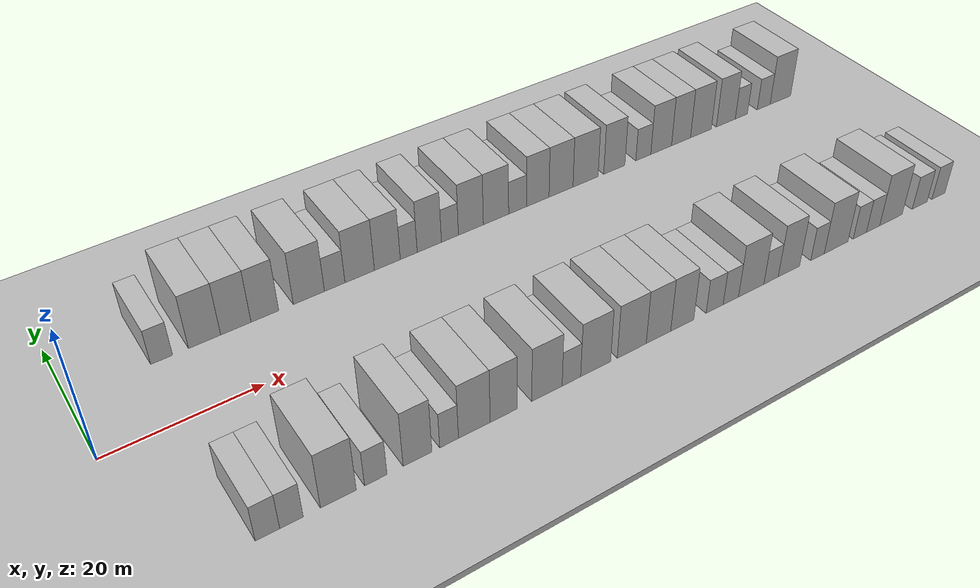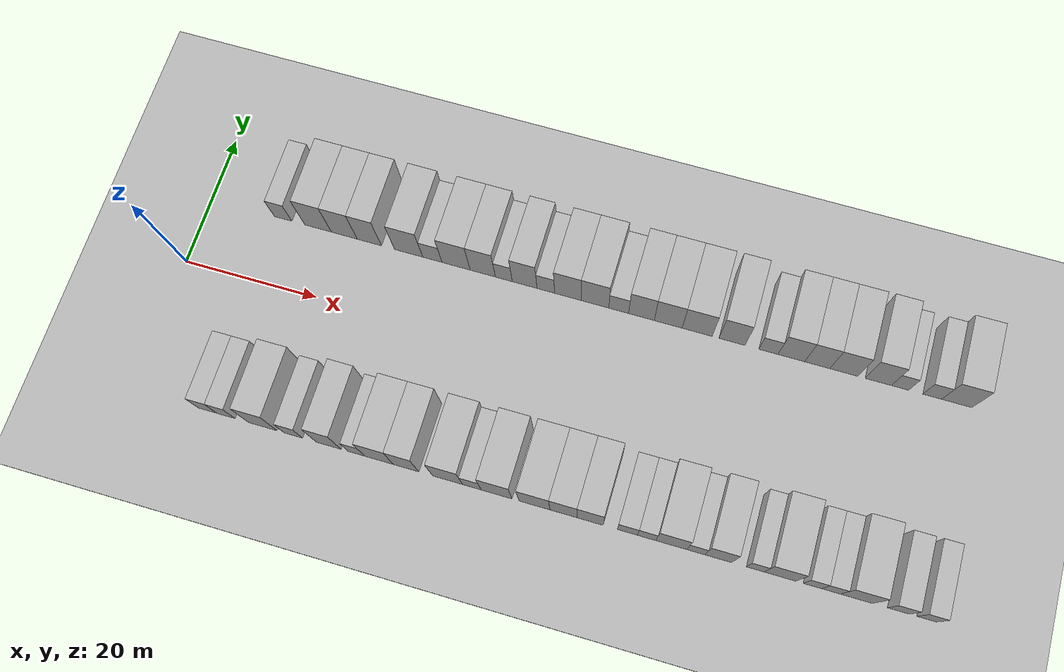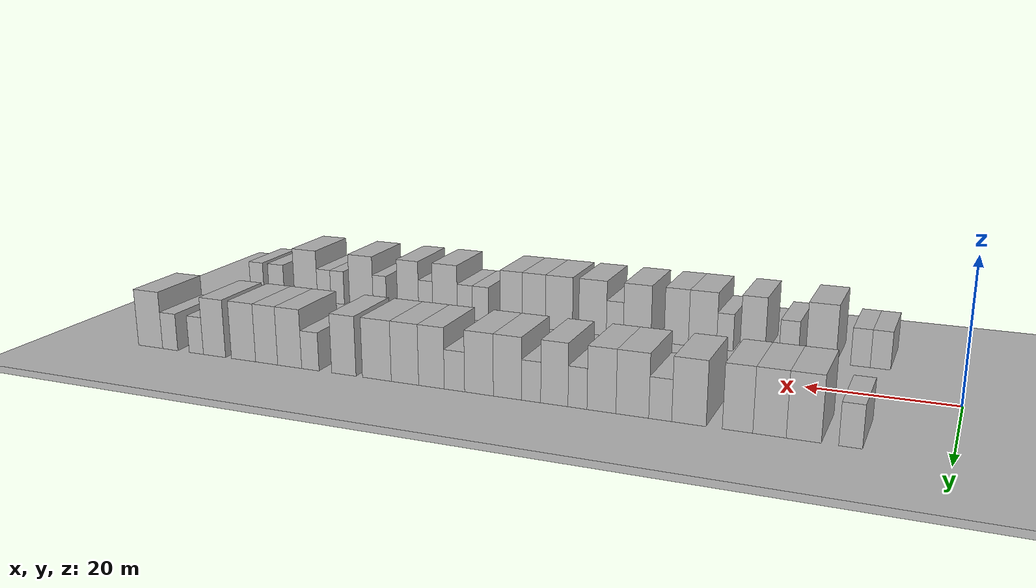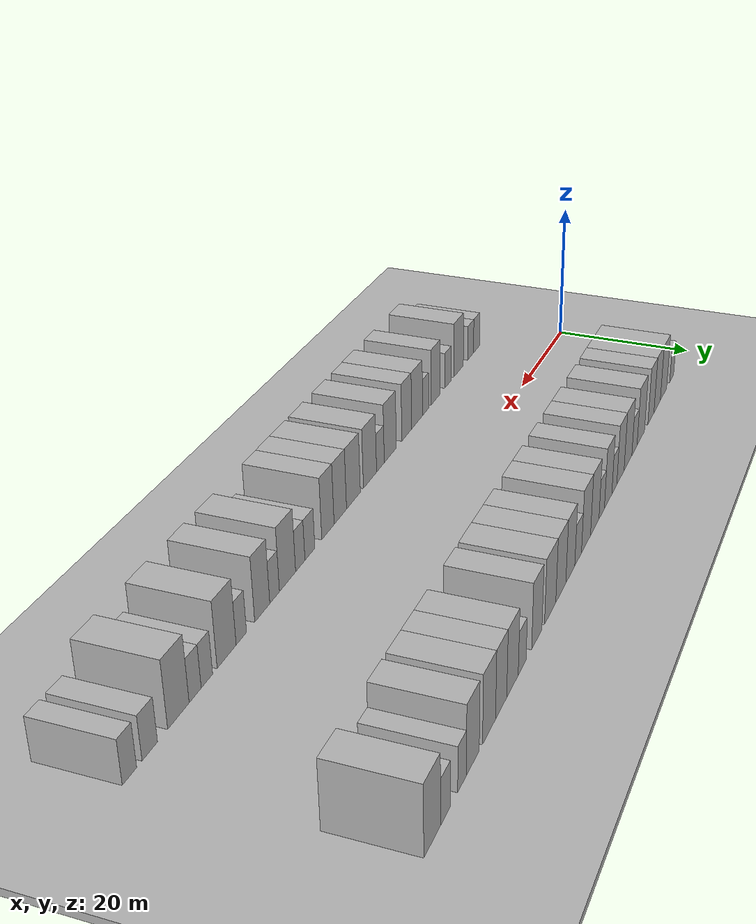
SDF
<sdf version="1.6">
 <world name="default">
  <include><name>ground_plane_1</name><uri>model://HANNAS_ground_plane</uri></include>
  <include>
   <name>ground_plane_2</name>
   <uri>model://HANNAS_ground_plane</uri>
   <pose>100 0 0  0 0 0</pose>
  </include>
  <model name="building_1">
   <static>1</static>
   <pose>11.3692 15.0000 0 0.000000 0.000000 1.570796</pose>
   <link name="link">
    <pose>0 0 3.00 0 0 0</pose>
    <collision name="collision"><geometry><box><size>10.0000 2.7384 6.0000</size></box></geometry></collision>
    <visual name="visual">
     <cast_shadows>0</cast_shadows>
     <geometry><box><size>10.0000 2.7384 6.0000</size></box></geometry>
     <material>
      <script>
       <uri>model://HANNAS_wall/materials/scripts</uri>
       <uri>model://HANNAS_wall/materials/textures</uri>
       <name>vrc/HANNAS_wall</name>
      </script>
     </material>
    </visual>
   </link>
  </model>
  <model name="building_2">
   <static>1</static>
   <pose>16.8051 15.0000 0 0.000000 0.000000 1.570796</pose>
   <link name="link">
    <pose>0 0 4.50 0 0 0</pose>
    <collision name="collision"><geometry><box><size>10.0000 4.1334 9.0000</size></box></geometry></collision>
    <visual name="visual">
     <cast_shadows>0</cast_shadows>
     <geometry><box><size>10.0000 4.1334 9.0000</size></box></geometry>
     <material>
      <script>
       <uri>model://HANNAS_wall/materials/scripts</uri>
       <uri>model://HANNAS_wall/materials/textures</uri>
       <name>vrc/HANNAS_wall</name>
      </script>
     </material>
    </visual>
   </link>
  </model>
  <model name="building_3">
   <static>1</static>
   <pose>20.8733 15.0000 0 0.000000 0.000000 1.570796</pose>
   <link name="link">
    <pose>0 0 4.50 0 0 0</pose>
    <collision name="collision"><geometry><box><size>10.0000 4.0029 9.0000</size></box></geometry></collision>
    <visual name="visual">
     <cast_shadows>0</cast_shadows>
     <geometry><box><size>10.0000 4.0029 9.0000</size></box></geometry>
     <material>
      <script>
       <uri>model://HANNAS_wall/materials/scripts</uri>
       <uri>model://HANNAS_wall/materials/textures</uri>
       <name>vrc/HANNAS_wall</name>
      </script>
     </material>
    </visual>
   </link>
  </model>
  <model name="building_4">
   <static>1</static>
   <pose>24.7356 15.0000 0 0.000000 0.000000 1.570796</pose>
   <link name="link">
    <pose>0 0 4.50 0 0 0</pose>
    <collision name="collision"><geometry><box><size>10.0000 3.7217 9.0000</size></box></geometry></collision>
    <visual name="visual">
     <cast_shadows>0</cast_shadows>
     <geometry><box><size>10.0000 3.7217 9.0000</size></box></geometry>
     <material>
      <script>
       <uri>model://HANNAS_wall/materials/scripts</uri>
       <uri>model://HANNAS_wall/materials/textures</uri>
       <name>vrc/HANNAS_wall</name>
      </script>
     </material>
    </visual>
   </link>
  </model>
  <model name="building_5">
   <static>1</static>
   <pose>30.7625 15.0000 0 0.000000 0.000000 1.570796</pose>
   <link name="link">
    <pose>0 0 4.50 0 0 0</pose>
    <collision name="collision"><geometry><box><size>10.0000 4.3320 9.0000</size></box></geometry></collision>
    <visual name="visual">
     <cast_shadows>0</cast_shadows>
     <geometry><box><size>10.0000 4.3320 9.0000</size></box></geometry>
     <material>
      <script>
       <uri>model://HANNAS_wall/materials/scripts</uri>
       <uri>model://HANNAS_wall/materials/textures</uri>
       <name>vrc/HANNAS_wall</name>
      </script>
     </material>
    </visual>
   </link>
  </model>
  <model name="building_6">
   <static>1</static>
   <pose>34.3926 15.0000 0 0.000000 0.000000 1.570796</pose>
   <link name="link">
    <pose>0 0 3.00 0 0 0</pose>
    <collision name="collision"><geometry><box><size>10.0000 2.9282 6.0000</size></box></geometry></collision>
    <visual name="visual">
     <cast_shadows>0</cast_shadows>
     <geometry><box><size>10.0000 2.9282 6.0000</size></box></geometry>
     <material>
      <script>
       <uri>model://HANNAS_wall/materials/scripts</uri>
       <uri>model://HANNAS_wall/materials/textures</uri>
       <name>vrc/HANNAS_wall</name>
      </script>
     </material>
    </visual>
   </link>
  </model>
  <model name="building_7">
   <static>1</static>
   <pose>37.9927 15.0000 0 0.000000 0.000000 1.570796</pose>
   <link name="link">
    <pose>0 0 4.50 0 0 0</pose>
    <collision name="collision"><geometry><box><size>10.0000 4.2720 9.0000</size></box></geometry></collision>
    <visual name="visual">
     <cast_shadows>0</cast_shadows>
     <geometry><box><size>10.0000 4.2720 9.0000</size></box></geometry>
     <material>
      <script>
       <uri>model://HANNAS_wall/materials/scripts</uri>
       <uri>model://HANNAS_wall/materials/textures</uri>
       <name>vrc/HANNAS_wall</name>
      </script>
     </material>
    </visual>
   </link>
  </model>
  <model name="building_8">
   <static>1</static>
   <pose>42.0451 15.0000 0 0.000000 0.000000 1.570796</pose>
   <link name="link">
    <pose>0 0 4.50 0 0 0</pose>
    <collision name="collision"><geometry><box><size>10.0000 3.8328 9.0000</size></box></geometry></collision>
    <visual name="visual">
     <cast_shadows>0</cast_shadows>
     <geometry><box><size>10.0000 3.8328 9.0000</size></box></geometry>
     <material>
      <script>
       <uri>model://HANNAS_wall/materials/scripts</uri>
       <uri>model://HANNAS_wall/materials/textures</uri>
       <name>vrc/HANNAS_wall</name>
      </script>
     </material>
    </visual>
   </link>
  </model>
  <model name="building_9">
   <static>1</static>
   <pose>45.2384 15.0000 0 0.000000 0.000000 1.570796</pose>
   <link name="link">
    <pose>0 0 3.00 0 0 0</pose>
    <collision name="collision"><geometry><box><size>10.0000 2.5539 6.0000</size></box></geometry></collision>
    <visual name="visual">
     <cast_shadows>0</cast_shadows>
     <geometry><box><size>10.0000 2.5539 6.0000</size></box></geometry>
     <material>
      <script>
       <uri>model://HANNAS_wall/materials/scripts</uri>
       <uri>model://HANNAS_wall/materials/textures</uri>
       <name>vrc/HANNAS_wall</name>
      </script>
     </material>
    </visual>
   </link>
  </model>
  <model name="building_10">
   <static>1</static>
   <pose>48.3754 15.0000 0 0.000000 0.000000 1.570796</pose>
   <link name="link">
    <pose>0 0 4.50 0 0 0</pose>
    <collision name="collision"><geometry><box><size>10.0000 3.7200 9.0000</size></box></geometry></collision>
    <visual name="visual">
     <cast_shadows>0</cast_shadows>
     <geometry><box><size>10.0000 3.7200 9.0000</size></box></geometry>
     <material>
      <script>
       <uri>model://HANNAS_wall/materials/scripts</uri>
       <uri>model://HANNAS_wall/materials/textures</uri>
       <name>vrc/HANNAS_wall</name>
      </script>
     </material>
    </visual>
   </link>
  </model>
  <model name="building_11">
   <static>1</static>
   <pose>51.5613 15.0000 0 0.000000 0.000000 1.570796</pose>
   <link name="link">
    <pose>0 0 3.00 0 0 0</pose>
    <collision name="collision"><geometry><box><size>10.0000 2.6518 6.0000</size></box></geometry></collision>
    <visual name="visual">
     <cast_shadows>0</cast_shadows>
     <geometry><box><size>10.0000 2.6518 6.0000</size></box></geometry>
     <material>
      <script>
       <uri>model://HANNAS_wall/materials/scripts</uri>
       <uri>model://HANNAS_wall/materials/textures</uri>
       <name>vrc/HANNAS_wall</name>
      </script>
     </material>
    </visual>
   </link>
  </model>
  <model name="building_12">
   <static>1</static>
   <pose>54.8684 15.0000 0 0.000000 0.000000 1.570796</pose>
   <link name="link">
    <pose>0 0 4.50 0 0 0</pose>
    <collision name="collision"><geometry><box><size>10.0000 3.9625 9.0000</size></box></geometry></collision>
    <visual name="visual">
     <cast_shadows>0</cast_shadows>
     <geometry><box><size>10.0000 3.9625 9.0000</size></box></geometry>
     <material>
      <script>
       <uri>model://HANNAS_wall/materials/scripts</uri>
       <uri>model://HANNAS_wall/materials/textures</uri>
       <name>vrc/HANNAS_wall</name>
      </script>
     </material>
    </visual>
   </link>
  </model>
  <model name="building_13">
   <static>1</static>
   <pose>58.9045 15.0000 0 0.000000 0.000000 1.570796</pose>
   <link name="link">
    <pose>0 0 4.50 0 0 0</pose>
    <collision name="collision"><geometry><box><size>10.0000 4.1097 9.0000</size></box></geometry></collision>
    <visual name="visual">
     <cast_shadows>0</cast_shadows>
     <geometry><box><size>10.0000 4.1097 9.0000</size></box></geometry>
     <material>
      <script>
       <uri>model://HANNAS_wall/materials/scripts</uri>
       <uri>model://HANNAS_wall/materials/textures</uri>
       <name>vrc/HANNAS_wall</name>
      </script>
     </material>
    </visual>
   </link>
  </model>
  <model name="building_14">
   <static>1</static>
   <pose>62.4323 15.0000 0 0.000000 0.000000 1.570796</pose>
   <link name="link">
    <pose>0 0 3.00 0 0 0</pose>
    <collision name="collision"><geometry><box><size>10.0000 2.9458 6.0000</size></box></geometry></collision>
    <visual name="visual">
     <cast_shadows>0</cast_shadows>
     <geometry><box><size>10.0000 2.9458 6.0000</size></box></geometry>
     <material>
      <script>
       <uri>model://HANNAS_wall/materials/scripts</uri>
       <uri>model://HANNAS_wall/materials/textures</uri>
       <name>vrc/HANNAS_wall</name>
      </script>
     </material>
    </visual>
   </link>
  </model>
  <model name="building_15">
   <static>1</static>
   <pose>65.8019 15.0000 0 0.000000 0.000000 1.570796</pose>
   <link name="link">
    <pose>0 0 4.50 0 0 0</pose>
    <collision name="collision"><geometry><box><size>10.0000 3.7934 9.0000</size></box></geometry></collision>
    <visual name="visual">
     <cast_shadows>0</cast_shadows>
     <geometry><box><size>10.0000 3.7934 9.0000</size></box></geometry>
     <material>
      <script>
       <uri>model://HANNAS_wall/materials/scripts</uri>
       <uri>model://HANNAS_wall/materials/textures</uri>
       <name>vrc/HANNAS_wall</name>
      </script>
     </material>
    </visual>
   </link>
  </model>
  <model name="building_16">
   <static>1</static>
   <pose>69.7563 15.0000 0 0.000000 0.000000 1.570796</pose>
   <link name="link">
    <pose>0 0 4.50 0 0 0</pose>
    <collision name="collision"><geometry><box><size>10.0000 4.1156 9.0000</size></box></geometry></collision>
    <visual name="visual">
     <cast_shadows>0</cast_shadows>
     <geometry><box><size>10.0000 4.1156 9.0000</size></box></geometry>
     <material>
      <script>
       <uri>model://HANNAS_wall/materials/scripts</uri>
       <uri>model://HANNAS_wall/materials/textures</uri>
       <name>vrc/HANNAS_wall</name>
      </script>
     </material>
    </visual>
   </link>
  </model>
  <model name="building_17">
   <static>1</static>
   <pose>74.0166 15.0000 0 0.000000 0.000000 1.570796</pose>
   <link name="link">
    <pose>0 0 4.50 0 0 0</pose>
    <collision name="collision"><geometry><box><size>10.0000 4.4050 9.0000</size></box></geometry></collision>
    <visual name="visual">
     <cast_shadows>0</cast_shadows>
     <geometry><box><size>10.0000 4.4050 9.0000</size></box></geometry>
     <material>
      <script>
       <uri>model://HANNAS_wall/materials/scripts</uri>
       <uri>model://HANNAS_wall/materials/textures</uri>
       <name>vrc/HANNAS_wall</name>
      </script>
     </material>
    </visual>
   </link>
  </model>
  <model name="building_18">
   <static>1</static>
   <pose>79.1240 15.0000 0 0.000000 0.000000 1.570796</pose>
   <link name="link">
    <pose>0 0 4.50 0 0 0</pose>
    <collision name="collision"><geometry><box><size>10.0000 3.8099 9.0000</size></box></geometry></collision>
    <visual name="visual">
     <cast_shadows>0</cast_shadows>
     <geometry><box><size>10.0000 3.8099 9.0000</size></box></geometry>
     <material>
      <script>
       <uri>model://HANNAS_wall/materials/scripts</uri>
       <uri>model://HANNAS_wall/materials/textures</uri>
       <name>vrc/HANNAS_wall</name>
      </script>
     </material>
    </visual>
   </link>
  </model>
  <model name="building_19">
   <static>1</static>
   <pose>84.4165 15.0000 0 0.000000 0.000000 1.570796</pose>
   <link name="link">
    <pose>0 0 3.00 0 0 0</pose>
    <collision name="collision"><geometry><box><size>10.0000 2.7750 6.0000</size></box></geometry></collision>
    <visual name="visual">
     <cast_shadows>0</cast_shadows>
     <geometry><box><size>10.0000 2.7750 6.0000</size></box></geometry>
     <material>
      <script>
       <uri>model://HANNAS_wall/materials/scripts</uri>
       <uri>model://HANNAS_wall/materials/textures</uri>
       <name>vrc/HANNAS_wall</name>
      </script>
     </material>
    </visual>
   </link>
  </model>
  <model name="building_20">
   <static>1</static>
   <pose>87.7496 15.0000 0 0.000000 0.000000 1.570796</pose>
   <link name="link">
    <pose>0 0 4.50 0 0 0</pose>
    <collision name="collision"><geometry><box><size>10.0000 3.8914 9.0000</size></box></geometry></collision>
    <visual name="visual">
     <cast_shadows>0</cast_shadows>
     <geometry><box><size>10.0000 3.8914 9.0000</size></box></geometry>
     <material>
      <script>
       <uri>model://HANNAS_wall/materials/scripts</uri>
       <uri>model://HANNAS_wall/materials/textures</uri>
       <name>vrc/HANNAS_wall</name>
      </script>
     </material>
    </visual>
   </link>
  </model>
  <model name="building_21">
   <static>1</static>
   <pose>91.5132 15.0000 0 0.000000 0.000000 1.570796</pose>
   <link name="link">
    <pose>0 0 4.50 0 0 0</pose>
    <collision name="collision"><geometry><box><size>10.0000 3.6357 9.0000</size></box></geometry></collision>
    <visual name="visual">
     <cast_shadows>0</cast_shadows>
     <geometry><box><size>10.0000 3.6357 9.0000</size></box></geometry>
     <material>
      <script>
       <uri>model://HANNAS_wall/materials/scripts</uri>
       <uri>model://HANNAS_wall/materials/textures</uri>
       <name>vrc/HANNAS_wall</name>
      </script>
     </material>
    </visual>
   </link>
  </model>
  <model name="building_22">
   <static>1</static>
   <pose>95.3576 15.0000 0 0.000000 0.000000 1.570796</pose>
   <link name="link">
    <pose>0 0 4.50 0 0 0</pose>
    <collision name="collision"><geometry><box><size>10.0000 4.0532 9.0000</size></box></geometry></collision>
    <visual name="visual">
     <cast_shadows>0</cast_shadows>
     <geometry><box><size>10.0000 4.0532 9.0000</size></box></geometry>
     <material>
      <script>
       <uri>model://HANNAS_wall/materials/scripts</uri>
       <uri>model://HANNAS_wall/materials/textures</uri>
       <name>vrc/HANNAS_wall</name>
      </script>
     </material>
    </visual>
   </link>
  </model>
  <model name="building_23">
   <static>1</static>
   <pose>100.2773 15.0000 0 0.000000 0.000000 1.570796</pose>
   <link name="link">
    <pose>0 0 4.50 0 0 0</pose>
    <collision name="collision"><geometry><box><size>10.0000 3.7861 9.0000</size></box></geometry></collision>
    <visual name="visual">
     <cast_shadows>0</cast_shadows>
     <geometry><box><size>10.0000 3.7861 9.0000</size></box></geometry>
     <material>
      <script>
       <uri>model://HANNAS_wall/materials/scripts</uri>
       <uri>model://HANNAS_wall/materials/textures</uri>
       <name>vrc/HANNAS_wall</name>
      </script>
     </material>
    </visual>
   </link>
  </model>
  <model name="building_24">
   <static>1</static>
   <pose>103.3981 15.0000 0 0.000000 0.000000 1.570796</pose>
   <link name="link">
    <pose>0 0 3.00 0 0 0</pose>
    <collision name="collision"><geometry><box><size>10.0000 2.4554 6.0000</size></box></geometry></collision>
    <visual name="visual">
     <cast_shadows>0</cast_shadows>
     <geometry><box><size>10.0000 2.4554 6.0000</size></box></geometry>
     <material>
      <script>
       <uri>model://HANNAS_wall/materials/scripts</uri>
       <uri>model://HANNAS_wall/materials/textures</uri>
       <name>vrc/HANNAS_wall</name>
      </script>
     </material>
    </visual>
   </link>
  </model>
  <model name="building_25">
   <static>1</static>
   <pose>107.9604 15.0000 0 0.000000 0.000000 1.570796</pose>
   <link name="link">
    <pose>0 0 3.00 0 0 0</pose>
    <collision name="collision"><geometry><box><size>10.0000 2.6691 6.0000</size></box></geometry></collision>
    <visual name="visual">
     <cast_shadows>0</cast_shadows>
     <geometry><box><size>10.0000 2.6691 6.0000</size></box></geometry>
     <material>
      <script>
       <uri>model://HANNAS_wall/materials/scripts</uri>
       <uri>model://HANNAS_wall/materials/textures</uri>
       <name>vrc/HANNAS_wall</name>
      </script>
     </material>
    </visual>
   </link>
  </model>
  <model name="building_26">
   <static>1</static>
   <pose>111.4401 15.0000 0 0.000000 0.000000 1.570796</pose>
   <link name="link">
    <pose>0 0 4.50 0 0 0</pose>
    <collision name="collision"><geometry><box><size>10.0000 4.2903 9.0000</size></box></geometry></collision>
    <visual name="visual">
     <cast_shadows>0</cast_shadows>
     <geometry><box><size>10.0000 4.2903 9.0000</size></box></geometry>
     <material>
      <script>
       <uri>model://HANNAS_wall/materials/scripts</uri>
       <uri>model://HANNAS_wall/materials/textures</uri>
       <name>vrc/HANNAS_wall</name>
      </script>
     </material>
    </visual>
   </link>
  </model>
  <model name="building_55">
   <static>1</static>
   <pose>11.3757 -15.0000 0 0.000000 0.000000 1.570796</pose>
   <link name="link">
    <pose>0 0 3.00 0 0 0</pose>
    <collision name="collision"><geometry><box><size>10.0000 2.7514 6.0000</size></box></geometry></collision>
    <visual name="visual">
     <cast_shadows>0</cast_shadows>
     <geometry><box><size>10.0000 2.7514 6.0000</size></box></geometry>
     <material>
      <script>
       <uri>model://HANNAS_wall/materials/scripts</uri>
       <uri>model://HANNAS_wall/materials/textures</uri>
       <name>vrc/HANNAS_wall</name>
      </script>
     </material>
    </visual>
   </link>
  </model>
  <model name="building_56">
   <static>1</static>
   <pose>14.0908 -15.0000 0 0.000000 0.000000 1.570796</pose>
   <link name="link">
    <pose>0 0 3.00 0 0 0</pose>
    <collision name="collision"><geometry><box><size>10.0000 2.6787 6.0000</size></box></geometry></collision>
    <visual name="visual">
     <cast_shadows>0</cast_shadows>
     <geometry><box><size>10.0000 2.6787 6.0000</size></box></geometry>
     <material>
      <script>
       <uri>model://HANNAS_wall/materials/scripts</uri>
       <uri>model://HANNAS_wall/materials/textures</uri>
       <name>vrc/HANNAS_wall</name>
      </script>
     </material>
    </visual>
   </link>
  </model>
  <model name="building_57">
   <static>1</static>
   <pose>19.5528 -15.0000 0 0.000000 0.000000 1.570796</pose>
   <link name="link">
    <pose>0 0 4.50 0 0 0</pose>
    <collision name="collision"><geometry><box><size>10.0000 4.2453 9.0000</size></box></geometry></collision>
    <visual name="visual">
     <cast_shadows>0</cast_shadows>
     <geometry><box><size>10.0000 4.2453 9.0000</size></box></geometry>
     <material>
      <script>
       <uri>model://HANNAS_wall/materials/scripts</uri>
       <uri>model://HANNAS_wall/materials/textures</uri>
       <name>vrc/HANNAS_wall</name>
      </script>
     </material>
    </visual>
   </link>
  </model>
  <model name="building_58">
   <static>1</static>
   <pose>24.0463 -15.0000 0 0.000000 0.000000 1.570796</pose>
   <link name="link">
    <pose>0 0 3.00 0 0 0</pose>
    <collision name="collision"><geometry><box><size>10.0000 2.7418 6.0000</size></box></geometry></collision>
    <visual name="visual">
     <cast_shadows>0</cast_shadows>
     <geometry><box><size>10.0000 2.7418 6.0000</size></box></geometry>
     <material>
      <script>
       <uri>model://HANNAS_wall/materials/scripts</uri>
       <uri>model://HANNAS_wall/materials/textures</uri>
       <name>vrc/HANNAS_wall</name>
      </script>
     </material>
    </visual>
   </link>
  </model>
  <model name="building_59">
   <static>1</static>
   <pose>29.2364 -15.0000 0 0.000000 0.000000 1.570796</pose>
   <link name="link">
    <pose>0 0 4.50 0 0 0</pose>
    <collision name="collision"><geometry><box><size>10.0000 3.6383 9.0000</size></box></geometry></collision>
    <visual name="visual">
     <cast_shadows>0</cast_shadows>
     <geometry><box><size>10.0000 3.6383 9.0000</size></box></geometry>
     <material>
      <script>
       <uri>model://HANNAS_wall/materials/scripts</uri>
       <uri>model://HANNAS_wall/materials/textures</uri>
       <name>vrc/HANNAS_wall</name>
      </script>
     </material>
    </visual>
   </link>
  </model>
  <model name="building_60">
   <static>1</static>
   <pose>33.2701 -15.0000 0 0.000000 0.000000 1.570796</pose>
   <link name="link">
    <pose>0 0 3.00 0 0 0</pose>
    <collision name="collision"><geometry><box><size>10.0000 2.4290 6.0000</size></box></geometry></collision>
    <visual name="visual">
     <cast_shadows>0</cast_shadows>
     <geometry><box><size>10.0000 2.4290 6.0000</size></box></geometry>
     <material>
      <script>
       <uri>model://HANNAS_wall/materials/scripts</uri>
       <uri>model://HANNAS_wall/materials/textures</uri>
       <name>vrc/HANNAS_wall</name>
      </script>
     </material>
    </visual>
   </link>
  </model>
  <model name="building_61">
   <static>1</static>
   <pose>36.5867 -15.0000 0 0.000000 0.000000 1.570796</pose>
   <link name="link">
    <pose>0 0 4.50 0 0 0</pose>
    <collision name="collision"><geometry><box><size>10.0000 4.2042 9.0000</size></box></geometry></collision>
    <visual name="visual">
     <cast_shadows>0</cast_shadows>
     <geometry><box><size>10.0000 4.2042 9.0000</size></box></geometry>
     <material>
      <script>
       <uri>model://HANNAS_wall/materials/scripts</uri>
       <uri>model://HANNAS_wall/materials/textures</uri>
       <name>vrc/HANNAS_wall</name>
      </script>
     </material>
    </visual>
   </link>
  </model>
  <model name="building_62">
   <static>1</static>
   <pose>40.5268 -15.0000 0 0.000000 0.000000 1.570796</pose>
   <link name="link">
    <pose>0 0 4.50 0 0 0</pose>
    <collision name="collision"><geometry><box><size>10.0000 3.6761 9.0000</size></box></geometry></collision>
    <visual name="visual">
     <cast_shadows>0</cast_shadows>
     <geometry><box><size>10.0000 3.6761 9.0000</size></box></geometry>
     <material>
      <script>
       <uri>model://HANNAS_wall/materials/scripts</uri>
       <uri>model://HANNAS_wall/materials/textures</uri>
       <name>vrc/HANNAS_wall</name>
      </script>
     </material>
    </visual>
   </link>
  </model>
  <model name="building_63">
   <static>1</static>
   <pose>46.5108 -15.0000 0 0.000000 0.000000 1.570796</pose>
   <link name="link">
    <pose>0 0 4.50 0 0 0</pose>
    <collision name="collision"><geometry><box><size>10.0000 4.2917 9.0000</size></box></geometry></collision>
    <visual name="visual">
     <cast_shadows>0</cast_shadows>
     <geometry><box><size>10.0000 4.2917 9.0000</size></box></geometry>
     <material>
      <script>
       <uri>model://HANNAS_wall/materials/scripts</uri>
       <uri>model://HANNAS_wall/materials/textures</uri>
       <name>vrc/HANNAS_wall</name>
      </script>
     </material>
    </visual>
   </link>
  </model>
  <model name="building_64">
   <static>1</static>
   <pose>49.9882 -15.0000 0 0.000000 0.000000 1.570796</pose>
   <link name="link">
    <pose>0 0 3.00 0 0 0</pose>
    <collision name="collision"><geometry><box><size>10.0000 2.6633 6.0000</size></box></geometry></collision>
    <visual name="visual">
     <cast_shadows>0</cast_shadows>
     <geometry><box><size>10.0000 2.6633 6.0000</size></box></geometry>
     <material>
      <script>
       <uri>model://HANNAS_wall/materials/scripts</uri>
       <uri>model://HANNAS_wall/materials/textures</uri>
       <name>vrc/HANNAS_wall</name>
      </script>
     </material>
    </visual>
   </link>
  </model>
  <model name="building_65">
   <static>1</static>
   <pose>53.5216 -15.0000 0 0.000000 0.000000 1.570796</pose>
   <link name="link">
    <pose>0 0 4.50 0 0 0</pose>
    <collision name="collision"><geometry><box><size>10.0000 4.4035 9.0000</size></box></geometry></collision>
    <visual name="visual">
     <cast_shadows>0</cast_shadows>
     <geometry><box><size>10.0000 4.4035 9.0000</size></box></geometry>
     <material>
      <script>
       <uri>model://HANNAS_wall/materials/scripts</uri>
       <uri>model://HANNAS_wall/materials/textures</uri>
       <name>vrc/HANNAS_wall</name>
      </script>
     </material>
    </visual>
   </link>
  </model>
  <model name="building_66">
   <static>1</static>
   <pose>58.9235 -15.0000 0 0.000000 0.000000 1.570796</pose>
   <link name="link">
    <pose>0 0 4.50 0 0 0</pose>
    <collision name="collision"><geometry><box><size>10.0000 4.4001 9.0000</size></box></geometry></collision>
    <visual name="visual">
     <cast_shadows>0</cast_shadows>
     <geometry><box><size>10.0000 4.4001 9.0000</size></box></geometry>
     <material>
      <script>
       <uri>model://HANNAS_wall/materials/scripts</uri>
       <uri>model://HANNAS_wall/materials/textures</uri>
       <name>vrc/HANNAS_wall</name>
      </script>
     </material>
    </visual>
   </link>
  </model>
  <model name="building_67">
   <static>1</static>
   <pose>63.0315 -15.0000 0 0.000000 0.000000 1.570796</pose>
   <link name="link">
    <pose>0 0 4.50 0 0 0</pose>
    <collision name="collision"><geometry><box><size>10.0000 3.8160 9.0000</size></box></geometry></collision>
    <visual name="visual">
     <cast_shadows>0</cast_shadows>
     <geometry><box><size>10.0000 3.8160 9.0000</size></box></geometry>
     <material>
      <script>
       <uri>model://HANNAS_wall/materials/scripts</uri>
       <uri>model://HANNAS_wall/materials/textures</uri>
       <name>vrc/HANNAS_wall</name>
      </script>
     </material>
    </visual>
   </link>
  </model>
  <model name="building_68">
   <static>1</static>
   <pose>66.7753 -15.0000 0 0.000000 0.000000 1.570796</pose>
   <link name="link">
    <pose>0 0 4.50 0 0 0</pose>
    <collision name="collision"><geometry><box><size>10.0000 3.6715 9.0000</size></box></geometry></collision>
    <visual name="visual">
     <cast_shadows>0</cast_shadows>
     <geometry><box><size>10.0000 3.6715 9.0000</size></box></geometry>
     <material>
      <script>
       <uri>model://HANNAS_wall/materials/scripts</uri>
       <uri>model://HANNAS_wall/materials/textures</uri>
       <name>vrc/HANNAS_wall</name>
      </script>
     </material>
    </visual>
   </link>
  </model>
  <model name="building_69">
   <static>1</static>
   <pose>72.0086 -15.0000 0 0.000000 0.000000 1.570796</pose>
   <link name="link">
    <pose>0 0 3.00 0 0 0</pose>
    <collision name="collision"><geometry><box><size>10.0000 2.7950 6.0000</size></box></geometry></collision>
    <visual name="visual">
     <cast_shadows>0</cast_shadows>
     <geometry><box><size>10.0000 2.7950 6.0000</size></box></geometry>
     <material>
      <script>
       <uri>model://HANNAS_wall/materials/scripts</uri>
       <uri>model://HANNAS_wall/materials/textures</uri>
       <name>vrc/HANNAS_wall</name>
      </script>
     </material>
    </visual>
   </link>
  </model>
  <model name="building_70">
   <static>1</static>
   <pose>74.6908 -15.0000 0 0.000000 0.000000 1.570796</pose>
   <link name="link">
    <pose>0 0 3.00 0 0 0</pose>
    <collision name="collision"><geometry><box><size>10.0000 2.5694 6.0000</size></box></geometry></collision>
    <visual name="visual">
     <cast_shadows>0</cast_shadows>
     <geometry><box><size>10.0000 2.5694 6.0000</size></box></geometry>
     <material>
      <script>
       <uri>model://HANNAS_wall/materials/scripts</uri>
       <uri>model://HANNAS_wall/materials/textures</uri>
       <name>vrc/HANNAS_wall</name>
      </script>
     </material>
    </visual>
   </link>
  </model>
  <model name="building_71">
   <static>1</static>
   <pose>78.1265 -15.0000 0 0.000000 0.000000 1.570796</pose>
   <link name="link">
    <pose>0 0 4.50 0 0 0</pose>
    <collision name="collision"><geometry><box><size>10.0000 4.3020 9.0000</size></box></geometry></collision>
    <visual name="visual">
     <cast_shadows>0</cast_shadows>
     <geometry><box><size>10.0000 4.3020 9.0000</size></box></geometry>
     <material>
      <script>
       <uri>model://HANNAS_wall/materials/scripts</uri>
       <uri>model://HANNAS_wall/materials/textures</uri>
       <name>vrc/HANNAS_wall</name>
      </script>
     </material>
    </visual>
   </link>
  </model>
  <model name="building_72">
   <static>1</static>
   <pose>81.5200 -15.0000 0 0.000000 0.000000 1.570796</pose>
   <link name="link">
    <pose>0 0 3.00 0 0 0</pose>
    <collision name="collision"><geometry><box><size>10.0000 2.4849 6.0000</size></box></geometry></collision>
    <visual name="visual">
     <cast_shadows>0</cast_shadows>
     <geometry><box><size>10.0000 2.4849 6.0000</size></box></geometry>
     <material>
      <script>
       <uri>model://HANNAS_wall/materials/scripts</uri>
       <uri>model://HANNAS_wall/materials/textures</uri>
       <name>vrc/HANNAS_wall</name>
      </script>
     </material>
    </visual>
   </link>
  </model>
  <model name="building_73">
   <static>1</static>
   <pose>84.6484 -15.0000 0 0.000000 0.000000 1.570796</pose>
   <link name="link">
    <pose>0 0 4.50 0 0 0</pose>
    <collision name="collision"><geometry><box><size>10.0000 3.7719 9.0000</size></box></geometry></collision>
    <visual name="visual">
     <cast_shadows>0</cast_shadows>
     <geometry><box><size>10.0000 3.7719 9.0000</size></box></geometry>
     <material>
      <script>
       <uri>model://HANNAS_wall/materials/scripts</uri>
       <uri>model://HANNAS_wall/materials/textures</uri>
       <name>vrc/HANNAS_wall</name>
      </script>
     </material>
    </visual>
   </link>
  </model>
  <model name="building_74">
   <static>1</static>
   <pose>89.7557 -15.0000 0 0.000000 0.000000 1.570796</pose>
   <link name="link">
    <pose>0 0 3.00 0 0 0</pose>
    <collision name="collision"><geometry><box><size>10.0000 2.4427 6.0000</size></box></geometry></collision>
    <visual name="visual">
     <cast_shadows>0</cast_shadows>
     <geometry><box><size>10.0000 2.4427 6.0000</size></box></geometry>
     <material>
      <script>
       <uri>model://HANNAS_wall/materials/scripts</uri>
       <uri>model://HANNAS_wall/materials/textures</uri>
       <name>vrc/HANNAS_wall</name>
      </script>
     </material>
    </visual>
   </link>
  </model>
  <model name="building_75">
   <static>1</static>
   <pose>93.1553 -15.0000 0 0.000000 0.000000 1.570796</pose>
   <link name="link">
    <pose>0 0 4.50 0 0 0</pose>
    <collision name="collision"><geometry><box><size>10.0000 4.3564 9.0000</size></box></geometry></collision>
    <visual name="visual">
     <cast_shadows>0</cast_shadows>
     <geometry><box><size>10.0000 4.3564 9.0000</size></box></geometry>
     <material>
      <script>
       <uri>model://HANNAS_wall/materials/scripts</uri>
       <uri>model://HANNAS_wall/materials/textures</uri>
       <name>vrc/HANNAS_wall</name>
      </script>
     </material>
    </visual>
   </link>
  </model>
  <model name="building_76">
   <static>1</static>
   <pose>97.5798 -15.0000 0 0.000000 0.000000 1.570796</pose>
   <link name="link">
    <pose>0 0 3.00 0 0 0</pose>
    <collision name="collision"><geometry><box><size>10.0000 2.4927 6.0000</size></box></geometry></collision>
    <visual name="visual">
     <cast_shadows>0</cast_shadows>
     <geometry><box><size>10.0000 2.4927 6.0000</size></box></geometry>
     <material>
      <script>
       <uri>model://HANNAS_wall/materials/scripts</uri>
       <uri>model://HANNAS_wall/materials/textures</uri>
       <name>vrc/HANNAS_wall</name>
      </script>
     </material>
    </visual>
   </link>
  </model>
  <model name="building_77">
   <static>1</static>
   <pose>100.1027 -15.0000 0 0.000000 0.000000 1.570796</pose>
   <link name="link">
    <pose>0 0 3.00 0 0 0</pose>
    <collision name="collision"><geometry><box><size>10.0000 2.5530 6.0000</size></box></geometry></collision>
    <visual name="visual">
     <cast_shadows>0</cast_shadows>
     <geometry><box><size>10.0000 2.5530 6.0000</size></box></geometry>
     <material>
      <script>
       <uri>model://HANNAS_wall/materials/scripts</uri>
       <uri>model://HANNAS_wall/materials/textures</uri>
       <name>vrc/HANNAS_wall</name>
      </script>
     </material>
    </visual>
   </link>
  </model>
  <model name="building_78">
   <static>1</static>
   <pose>103.5740 -15.0000 0 0.000000 0.000000 1.570796</pose>
   <link name="link">
    <pose>0 0 4.50 0 0 0</pose>
    <collision name="collision"><geometry><box><size>10.0000 4.3895 9.0000</size></box></geometry></collision>
    <visual name="visual">
     <cast_shadows>0</cast_shadows>
     <geometry><box><size>10.0000 4.3895 9.0000</size></box></geometry>
     <material>
      <script>
       <uri>model://HANNAS_wall/materials/scripts</uri>
       <uri>model://HANNAS_wall/materials/textures</uri>
       <name>vrc/HANNAS_wall</name>
      </script>
     </material>
    </visual>
   </link>
  </model>
  <model name="building_79">
   <static>1</static>
   <pose>109.2533 -15.0000 0 0.000000 0.000000 1.570796</pose>
   <link name="link">
    <pose>0 0 3.00 0 0 0</pose>
    <collision name="collision"><geometry><box><size>10.0000 2.9691 6.0000</size></box></geometry></collision>
    <visual name="visual">
     <cast_shadows>0</cast_shadows>
     <geometry><box><size>10.0000 2.9691 6.0000</size></box></geometry>
     <material>
      <script>
       <uri>model://HANNAS_wall/materials/scripts</uri>
       <uri>model://HANNAS_wall/materials/textures</uri>
       <name>vrc/HANNAS_wall</name>
      </script>
     </material>
    </visual>
   </link>
  </model>
  <model name="building_80">
   <static>1</static>
   <pose>113.0614 -15.0000 0 0.000000 0.000000 1.570796</pose>
   <link name="link">
    <pose>0 0 3.00 0 0 0</pose>
    <collision name="collision"><geometry><box><size>10.0000 2.6472 6.0000</size></box></geometry></collision>
    <visual name="visual">
     <cast_shadows>0</cast_shadows>
     <geometry><box><size>10.0000 2.6472 6.0000</size></box></geometry>
     <material>
      <script>
       <uri>model://HANNAS_wall/materials/scripts</uri>
       <uri>model://HANNAS_wall/materials/textures</uri>
       <name>vrc/HANNAS_wall</name>
      </script>
     </material>
    </visual>
   </link>
  </model>
 </world>
</sdf>
